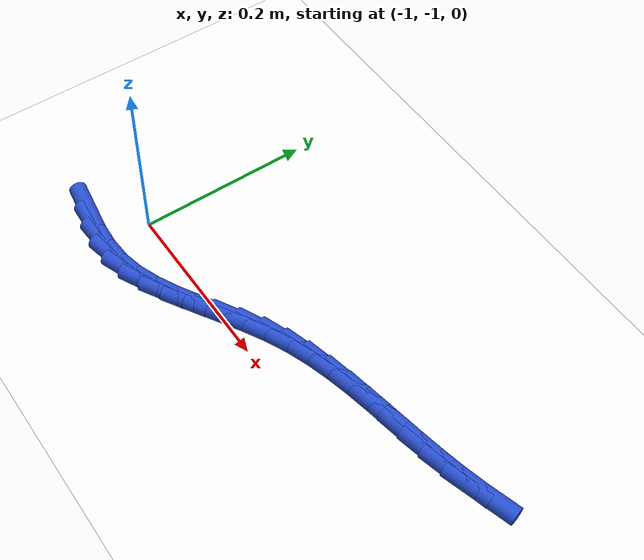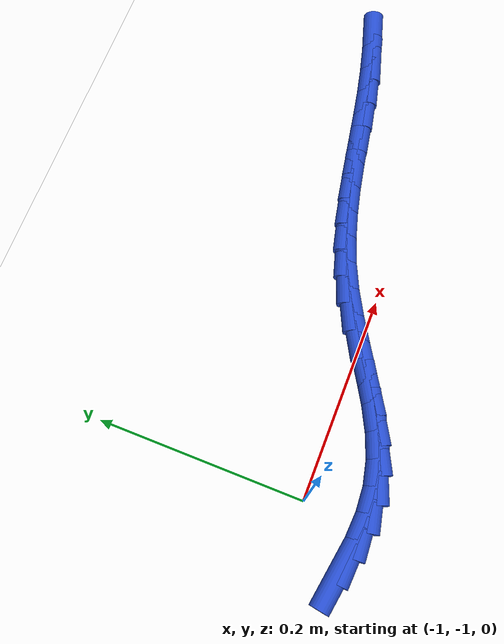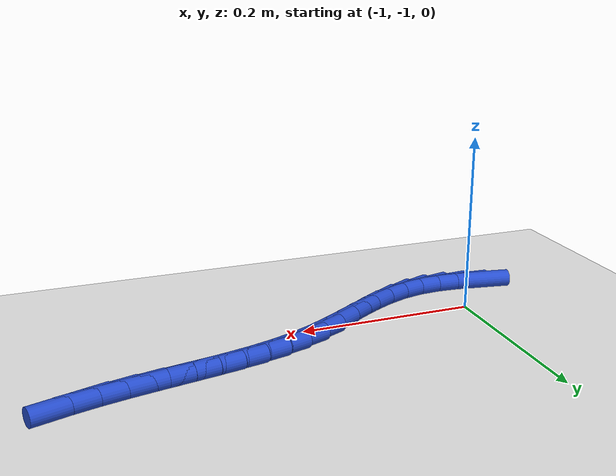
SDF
<sdf version="1.6">
 <world name="default">
  <model name="ground_plane">
   <static>1</static>
   <link name="link">
    <collision name="collision">
     <geometry><plane><normal>0 0 1</normal><size>100 100</size></plane></geometry>
     <surface><friction><ode><mu>100</mu><mu2>50</mu2></ode></friction></surface>
    </collision>
    <visual name="visual">
     <cast_shadows>0</cast_shadows>
     <geometry><plane><normal>0 0 1</normal><size>100 100</size></plane></geometry>
     <material>
      <script><uri>file://media/materials/scripts/gazebo.material</uri><name>Gazebo/WhiteGlow</name></script>
     </material>
    </visual>
   </link>
  </model>
  <model name="line">
   <link name="link_188">
    <pose>-1.0428619980626337 -1.0499362475401206 0.01 0 1.57 -0.15954793016679386</pose>
    <collision name="collision">
     <geometry><cylinder><radius>0.01</radius><length>0.08</length></cylinder></geometry>
    </collision>
    <visual name="visual">
     <material>
      <script><name>Gazebo/Blue</name><uri>file://media/materials/scripts/gazebo.material</uri></script>
     </material>
     <geometry><cylinder><radius>0.01</radius><length>0.08</length></cylinder></geometry>
    </visual>
   </link>
   <link name="link_189">
    <pose>-1.0173406426431548 -1.0540430330695947 0.01 0 1.57 -0.06289293950392078</pose>
    <collision name="collision">
     <geometry><cylinder><radius>0.01</radius><length>0.08</length></cylinder></geometry>
    </collision>
    <visual name="visual">
     <material>
      <script><name>Gazebo/Blue</name><uri>file://media/materials/scripts/gazebo.material</uri></script>
     </material>
     <geometry><cylinder><radius>0.01</radius><length>0.08</length></cylinder></geometry>
    </visual>
   </link>
   <link name="link_190">
    <pose>-0.9922581172253494 -1.0556226300828842 0.01 0 1.57 0.06407604773455457</pose>
    <collision name="collision">
     <geometry><cylinder><radius>0.01</radius><length>0.08</length></cylinder></geometry>
    </collision>
    <visual name="visual">
     <material>
      <script><name>Gazebo/Blue</name><uri>file://media/materials/scripts/gazebo.material</uri></script>
     </material>
     <geometry><cylinder><radius>0.01</radius><length>0.08</length></cylinder></geometry>
    </visual>
   </link>
   <link name="link_191">
    <pose>-0.9676367928211311 -1.0540428302506453 0.01 0 1.57 0.21800112420525944</pose>
    <collision name="collision">
     <geometry><cylinder><radius>0.01</radius><length>0.08</length></cylinder></geometry>
    </collision>
    <visual name="visual">
     <material>
      <script><name>Gazebo/Blue</name><uri>file://media/materials/scripts/gazebo.material</uri></script>
     </material>
     <geometry><cylinder><radius>0.01</radius><length>0.08</length></cylinder></geometry>
    </visual>
   </link>
   <link name="link_192">
    <pose>-0.9434963526043193 -1.0486952031054442 0.01 0 1.57 0.36325155132116577</pose>
    <collision name="collision">
     <geometry><cylinder><radius>0.01</radius><length>0.08</length></cylinder></geometry>
    </collision>
    <visual name="visual">
     <material>
      <script><name>Gazebo/Blue</name><uri>file://media/materials/scripts/gazebo.material</uri></script>
     </material>
     <geometry><cylinder><radius>0.01</radius><length>0.08</length></cylinder></geometry>
    </visual>
   </link>
   <link name="link_193">
    <pose>-0.9197765037814171 -1.0396788226648932 0.01 0 1.57 0.46536052943241396</pose>
    <collision name="collision">
     <geometry><cylinder><radius>0.01</radius><length>0.08</length></cylinder></geometry>
    </collision>
    <visual name="visual">
     <material>
      <script><name>Gazebo/Blue</name><uri>file://media/materials/scripts/gazebo.material</uri></script>
     </material>
     <geometry><cylinder><radius>0.01</radius><length>0.08</length></cylinder></geometry>
    </visual>
   </link>
   <link name="link_194">
    <pose>-0.8963253650038625 -1.0279029977666743 0.01 0 1.57 0.5270158666099644</pose>
    <collision name="collision">
     <geometry><cylinder><radius>0.01</radius><length>0.08</length></cylinder></geometry>
    </collision>
    <visual name="visual">
     <material>
      <script><name>Gazebo/Blue</name><uri>file://media/materials/scripts/gazebo.material</uri></script>
     </material>
     <geometry><cylinder><radius>0.01</radius><length>0.08</length></cylinder></geometry>
    </visual>
   </link>
   <link name="link_195">
    <pose>-0.8729860311760814 -1.0143214796436326 0.01 0 1.57 0.5529888457698032</pose>
    <collision name="collision">
     <geometry><cylinder><radius>0.01</radius><length>0.08</length></cylinder></geometry>
    </collision>
    <visual name="visual">
     <material>
      <script><name>Gazebo/Blue</name><uri>file://media/materials/scripts/gazebo.material</uri></script>
     </material>
     <geometry><cylinder><radius>0.01</radius><length>0.08</length></cylinder></geometry>
    </visual>
   </link>
   <link name="link_196">
    <pose>-0.8496015972024986 -0.9998880195286131 0.01 0 1.57 0.5460054277130533</pose>
    <collision name="collision">
     <geometry><cylinder><radius>0.01</radius><length>0.08</length></cylinder></geometry>
    </collision>
    <visual name="visual">
     <material>
      <script><name>Gazebo/Blue</name><uri>file://media/materials/scripts/gazebo.material</uri></script>
     </material>
     <geometry><cylinder><radius>0.01</radius><length>0.08</length></cylinder></geometry>
    </visual>
   </link>
   <link name="link_197">
    <pose>-0.8260151579875398 -0.9855563686544613 0.01 0 1.57 0.5062402430155439</pose>
    <collision name="collision">
     <geometry><cylinder><radius>0.01</radius><length>0.08</length></cylinder></geometry>
    </collision>
    <visual name="visual">
     <material>
      <script><name>Gazebo/Blue</name><uri>file://media/materials/scripts/gazebo.material</uri></script>
     </material>
     <geometry><cylinder><radius>0.01</radius><length>0.08</length></cylinder></geometry>
    </visual>
   </link>
   <link name="link_198">
    <pose>-0.8020698084356311 -0.9722802782540231 0.01 0 1.57 0.43341111312991915</pose>
    <collision name="collision">
     <geometry><cylinder><radius>0.01</radius><length>0.08</length></cylinder></geometry>
    </collision>
    <visual name="visual">
     <material>
      <script><name>Gazebo/Blue</name><uri>file://media/materials/scripts/gazebo.material</uri></script>
     </material>
     <geometry><cylinder><radius>0.01</radius><length>0.08</length></cylinder></geometry>
    </visual>
   </link>
   <link name="link_199">
    <pose>-0.777617145919651 -0.9609646597072679 0.01 0 1.57 0.3523401122793736</pose>
    <collision name="collision">
     <geometry><cylinder><radius>0.01</radius><length>0.08</length></cylinder></geometry>
    </collision>
    <visual name="visual">
     <material>
      <script><name>Gazebo/Blue</name><uri>file://media/materials/scripts/gazebo.material</uri></script>
     </material>
     <geometry><cylinder><radius>0.01</radius><length>0.08</length></cylinder></geometry>
    </visual>
   </link>
   <link name="link_200">
    <pose>-0.7526366631126664 -0.9517797686081463 0.01 0 1.57 0.28503835152418083</pose>
    <collision name="collision">
     <geometry><cylinder><radius>0.01</radius><length>0.08</length></cylinder></geometry>
    </collision>
    <visual name="visual">
     <material>
      <script><name>Gazebo/Blue</name><uri>file://media/materials/scripts/gazebo.material</uri></script>
     </material>
     <geometry><cylinder><radius>0.01</radius><length>0.08</length></cylinder></geometry>
    </visual>
   </link>
   <link name="link_201">
    <pose>-0.7272066521793196 -0.9443283368180326 0.01 0 1.57 0.23328131008803019</pose>
    <collision name="collision">
     <geometry><cylinder><radius>0.01</radius><length>0.08</length></cylinder></geometry>
    </collision>
    <visual name="visual">
     <material>
      <script><name>Gazebo/Blue</name><uri>file://media/materials/scripts/gazebo.material</uri></script>
     </material>
     <geometry><cylinder><radius>0.01</radius><length>0.08</length></cylinder></geometry>
    </visual>
   </link>
   <link name="link_202">
    <pose>-0.701407966783477 -0.9381983824424142 0.01 0 1.57 0.19751194566380867</pose>
    <collision name="collision">
     <geometry><cylinder><radius>0.01</radius><length>0.08</length></cylinder></geometry>
    </collision>
    <visual name="visual">
     <material>
      <script><name>Gazebo/Blue</name><uri>file://media/materials/scripts/gazebo.material</uri></script>
     </material>
     <geometry><cylinder><radius>0.01</radius><length>0.08</length></cylinder></geometry>
    </visual>
   </link>
   <link name="link_203">
    <pose>-0.675321460589006 -0.9329779235867791 0.01 0 1.57 0.1777289493941075</pose>
    <collision name="collision">
     <geometry><cylinder><radius>0.01</radius><length>0.08</length></cylinder></geometry>
    </collision>
    <visual name="visual">
     <material>
      <script><name>Gazebo/Blue</name><uri>file://media/materials/scripts/gazebo.material</uri></script>
     </material>
     <geometry><cylinder><radius>0.01</radius><length>0.08</length></cylinder></geometry>
    </visual>
   </link>
   <link name="link_204">
    <pose>-0.6490279872597728 -0.9282549783566152 0.01 0 1.57 0.17375926268635017</pose>
    <collision name="collision">
     <geometry><cylinder><radius>0.01</radius><length>0.08</length></cylinder></geometry>
    </collision>
    <visual name="visual">
     <material>
      <script><name>Gazebo/Blue</name><uri>file://media/materials/scripts/gazebo.material</uri></script>
     </material>
     <geometry><cylinder><radius>0.01</radius><length>0.08</length></cylinder></geometry>
    </visual>
   </link>
   <link name="link_205">
    <pose>-0.6226084004596444 -0.92361756485741 0.01 0 1.57 0.1854101835557102</pose>
    <collision name="collision">
     <geometry><cylinder><radius>0.01</radius><length>0.08</length></cylinder></geometry>
    </collision>
    <visual name="visual">
     <material>
      <script><name>Gazebo/Blue</name><uri>file://media/materials/scripts/gazebo.material</uri></script>
     </material>
     <geometry><cylinder><radius>0.01</radius><length>0.08</length></cylinder></geometry>
    </visual>
   </link>
   <link name="link_206">
    <pose>-0.5961435538524871 -0.9186537011946511 0.01 0 1.57 0.2124660891893512</pose>
    <collision name="collision">
     <geometry><cylinder><radius>0.01</radius><length>0.08</length></cylinder></geometry>
    </collision>
    <visual name="visual">
     <material>
      <script><name>Gazebo/Blue</name><uri>file://media/materials/scripts/gazebo.material</uri></script>
     </material>
     <geometry><cylinder><radius>0.01</radius><length>0.08</length></cylinder></geometry>
    </visual>
   </link>
   <link name="link_207">
    <pose>-0.5697143330209753 -0.9129523387121733 0.01 0 1.57 0.25022580094141</pose>
    <collision name="collision">
     <geometry><cylinder><radius>0.01</radius><length>0.08</length></cylinder></geometry>
    </collision>
    <visual name="visual">
     <material>
      <script><name>Gazebo/Blue</name><uri>file://media/materials/scripts/gazebo.material</uri></script>
     </material>
     <geometry><cylinder><radius>0.01</radius><length>0.08</length></cylinder></geometry>
    </visual>
   </link>
   <link name="link_208">
    <pose>-0.5434059311075838 -0.9062283726813405 0.01 0 1.57 0.28975435673265726</pose>
    <collision name="collision">
     <geometry><cylinder><radius>0.01</radius><length>0.08</length></cylinder></geometry>
    </collision>
    <visual name="visual">
     <material>
      <script><name>Gazebo/Blue</name><uri>file://media/materials/scripts/gazebo.material</uri></script>
     </material>
     <geometry><cylinder><radius>0.01</radius><length>0.08</length></cylinder></geometry>
    </visual>
   </link>
  </model>
 </world>
</sdf>
